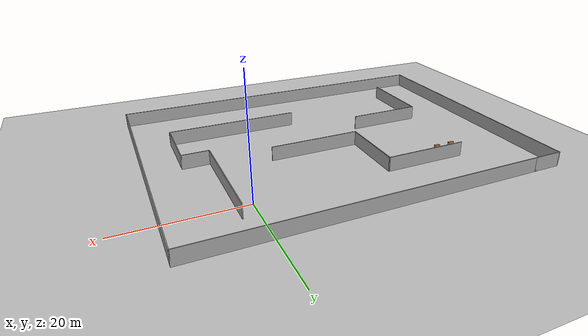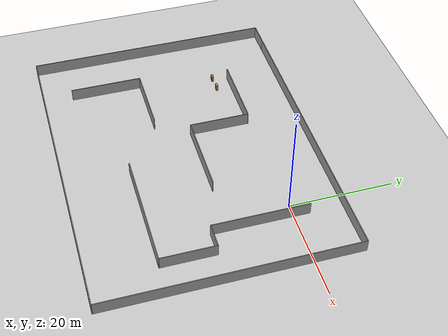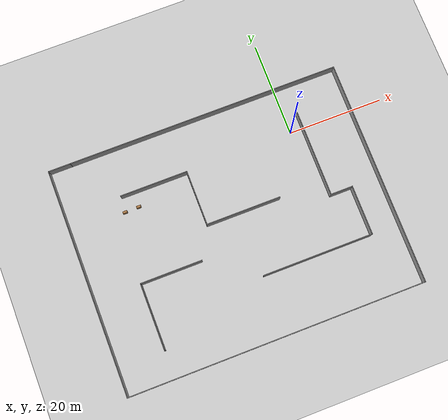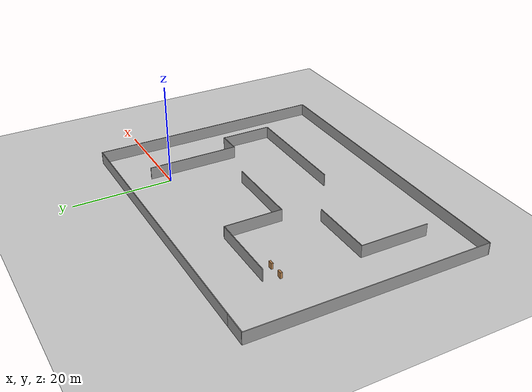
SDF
<sdf version="1.7">
 <world name="default">
  <light name="sun" type="directional">
   <pose>0 0 10 0 -0 0</pose>
   <diffuse>0.8 0.8 0.8 1</diffuse>
   <specular>0.2 0.2 0.2 1</specular>
   <attenuation>
    <range>1000</range>
    <constant>0.9</constant>
    <linear>0.01</linear>
    <quadratic>0.001</quadratic>
   </attenuation>
   <direction>-0.5 0.1 -0.9</direction>
   <spot><inner_angle>0</inner_angle><outer_angle>0</outer_angle><falloff>0</falloff></spot>
  </light>
  <model name="ground_plane">
   <static>1</static>
   <link name="link">
    <collision name="collision">
     <geometry><plane><normal>0 0 1</normal><size>100 100</size></plane></geometry>
     <surface>
      <contact><collide_bitmask>65535</collide_bitmask></contact>
      <friction><ode><mu>100</mu><mu2>50</mu2></ode></friction>
     </surface>
    </collision>
    <visual name="visual">
     <cast_shadows>0</cast_shadows>
     <geometry><plane><normal>0 0 1</normal><size>100 100</size></plane></geometry>
     <material>
      <script><uri>file://media/materials/scripts/gazebo.material</uri><name>Gazebo/Grey</name></script>
     </material>
    </visual>
   </link>
  </model>
  <gravity>0 0 -9.8</gravity>
  <magnetic_field>6e-06 2.3e-05 -4.2e-05</magnetic_field>
  <atmosphere type="adiabatic"/>
  <physics type="ode">
   <max_step_size>0.001</max_step_size>
   <real_time_factor>1</real_time_factor>
   <real_time_update_rate>1000</real_time_update_rate>
  </physics>
  <scene><ambient>0.4 0.4 0.4 1</ambient><background>0.7 0.7 0.7 1</background><shadows>1</shadows></scene>
  <audio><device>default</device></audio>
  <spherical_coordinates>
   <surface_model>EARTH_WGS84</surface_model>
   <latitude_deg>0</latitude_deg>
   <longitude_deg>0</longitude_deg>
   <elevation>0</elevation>
   <heading_deg>0</heading_deg>
  </spherical_coordinates>
  <model name="Untitled">
   <pose>-17.9168 -14.3854 0 0 -0 0</pose>
   <link name="Wall_10">
    <collision name="Wall_10_Collision">
     <geometry><box><size>15.75 0.15 2.5</size></box></geometry>
     <pose>0 0 1.25 0 -0 0</pose>
    </collision>
    <visual name="Wall_10_Visual">
     <pose>0 0 1.25 0 -0 0</pose>
     <geometry><box><size>15.75 0.15 2.5</size></box></geometry>
     <material>
      <script><uri>file://media/materials/scripts/gazebo.material</uri><name>Gazebo/Grey</name></script>
      <ambient>1 1 1 1</ambient>
     </material>
     <meta><layer>0</layer></meta>
    </visual>
    <pose>2.79517 2.25792 0 0 -0 0</pose>
   </link>
   <link name="Wall_12">
    <collision name="Wall_12_Collision">
     <geometry><box><size>14 0.15 2.5</size></box></geometry>
     <pose>0 0 1.25 0 -0 0</pose>
    </collision>
    <visual name="Wall_12_Visual">
     <pose>0 0 1.25 0 -0 0</pose>
     <geometry><box><size>14 0.15 2.5</size></box></geometry>
     <material>
      <script><uri>file://media/materials/scripts/gazebo.material</uri><name>Gazebo/Grey</name></script>
      <ambient>1 1 1 1</ambient>
     </material>
     <meta><layer>0</layer></meta>
    </visual>
    <pose>-21.3507 -11.033 0 0 -0 1.5708</pose>
   </link>
   <link name="Wall_13">
    <collision name="Wall_13_Collision">
     <geometry><box><size>13 0.15 2.5</size></box></geometry>
     <pose>0 0 1.25 0 -0 0</pose>
    </collision>
    <visual name="Wall_13_Visual">
     <pose>0 0 1.25 0 -0 0</pose>
     <geometry><box><size>13 0.15 2.5</size></box></geometry>
     <material>
      <script><uri>file://media/materials/scripts/gazebo.material</uri><name>Gazebo/Grey</name></script>
      <ambient>1 1 1 1</ambient>
     </material>
     <meta><layer>0</layer></meta>
    </visual>
    <pose>-14.9257 -4.10799 0 0 -0 0</pose>
   </link>
   <link name="Wall_16">
    <collision name="Wall_16_Collision">
     <geometry><box><size>18.5 0.15 2.5</size></box></geometry>
     <pose>0 0 1.25 0 -0 0</pose>
    </collision>
    <visual name="Wall_16_Visual">
     <pose>0 0 1.25 0 -0 0</pose>
     <geometry><box><size>18.5 0.15 2.5</size></box></geometry>
     <material>
      <script><uri>file://media/materials/scripts/gazebo.material</uri><name>Gazebo/Grey</name></script>
      <ambient>1 1 1 1</ambient>
     </material>
     <meta><layer>0</layer></meta>
    </visual>
    <pose>20.3843 8.23882 0 0 -0 -1.5708</pose>
   </link>
   <link name="Wall_17">
    <collision name="Wall_17_Collision">
     <geometry><box><size>4.75 0.15 2.5</size></box></geometry>
     <pose>0 0 1.25 0 -0 0</pose>
    </collision>
    <visual name="Wall_17_Visual">
     <pose>0 0 1.25 0 -0 0</pose>
     <geometry><box><size>4.75 0.15 2.5</size></box></geometry>
     <material>
      <script><uri>file://media/materials/scripts/gazebo.material</uri><name>Gazebo/Grey</name></script>
      <ambient>1 1 1 1</ambient>
     </material>
     <meta><layer>0</layer></meta>
    </visual>
    <pose>22.6843 -0.936182 0 0 -0 0</pose>
   </link>
   <link name="Wall_18">
    <collision name="Wall_18_Collision">
     <geometry><box><size>10.5 0.15 2.5</size></box></geometry>
     <pose>0 0 1.25 0 -0 0</pose>
    </collision>
    <visual name="Wall_18_Visual">
     <pose>0 0 1.25 0 -0 0</pose>
     <geometry><box><size>10.5 0.15 2.5</size></box></geometry>
     <material>
      <script><uri>file://media/materials/scripts/gazebo.material</uri><name>Gazebo/Grey</name></script>
      <ambient>1 1 1 1</ambient>
     </material>
     <meta><layer>0</layer></meta>
    </visual>
    <pose>24.9843 -6.11118 0 0 -0 -1.5708</pose>
   </link>
   <link name="Wall_19">
    <collision name="Wall_19_Collision">
     <geometry><box><size>23.25 0.15 2.5</size></box></geometry>
     <pose>0 0 1.25 0 -0 0</pose>
    </collision>
    <visual name="Wall_19_Visual">
     <pose>0 0 1.25 0 -0 0</pose>
     <geometry><box><size>23.25 0.15 2.5</size></box></geometry>
     <material>
      <script><uri>file://media/materials/scripts/gazebo.material</uri><name>Gazebo/Grey</name></script>
      <ambient>1 1 1 1</ambient>
     </material>
     <meta><layer>0</layer></meta>
    </visual>
    <pose>13.4343 -11.2862 0 0 -0 3.14159</pose>
   </link>
   <link name="Wall_2">
    <collision name="Wall_2_Collision">
     <geometry><box><size>57.5 0.15 2.5</size></box></geometry>
     <pose>0 0 1.25 0 -0 0</pose>
    </collision>
    <visual name="Wall_2_Visual">
     <pose>0 0 1.25 0 -0 0</pose>
     <geometry><box><size>57.5 0.15 2.5</size></box></geometry>
     <material>
      <script><uri>file://media/materials/scripts/gazebo.material</uri><name>Gazebo/Grey</name></script>
      <ambient>1 1 1 1</ambient>
     </material>
     <meta><layer>0</layer></meta>
    </visual>
    <pose>2.375 23.8 0 0 -0 0</pose>
   </link>
   <link name="Wall_3">
    <collision name="Wall_3_Collision">
     <geometry><box><size>47.75 0.15 2.5</size></box></geometry>
     <pose>0 0 1.25 0 -0 0</pose>
    </collision>
    <visual name="Wall_3_Visual">
     <pose>0 0 1.25 0 -0 0</pose>
     <geometry><box><size>47.75 0.15 2.5</size></box></geometry>
     <material>
      <script><uri>file://media/materials/scripts/gazebo.material</uri><name>Gazebo/Grey</name></script>
      <ambient>1 1 1 1</ambient>
     </material>
     <meta><layer>0</layer></meta>
    </visual>
    <pose>31.05 -0 0 0 -0 -1.5708</pose>
   </link>
   <link name="Wall_4">
    <collision name="Wall_4_Collision">
     <geometry><box><size>62.25 0.15 2.5</size></box></geometry>
     <pose>0 0 1.25 0 -0 0</pose>
    </collision>
    <visual name="Wall_4_Visual">
     <pose>0 0 1.25 0 -0 0</pose>
     <geometry><box><size>62.25 0.15 2.5</size></box></geometry>
     <material>
      <script><uri>file://media/materials/scripts/gazebo.material</uri><name>Gazebo/Grey</name></script>
      <ambient>1 1 1 1</ambient>
     </material>
     <meta><layer>0</layer></meta>
    </visual>
    <pose>1e-06 -23.8 0 0 -0 3.14159</pose>
   </link>
   <link name="Wall_5">
    <collision name="Wall_5_Collision">
     <geometry><box><size>47.75 0.15 2.5</size></box></geometry>
     <pose>0 0 1.25 0 -0 0</pose>
    </collision>
    <visual name="Wall_5_Visual">
     <pose>0 0 1.25 0 -0 0</pose>
     <geometry><box><size>47.75 0.15 2.5</size></box></geometry>
     <material>
      <script><uri>file://media/materials/scripts/gazebo.material</uri><name>Gazebo/Grey</name></script>
      <ambient>1 1 1 1</ambient>
     </material>
     <meta><layer>0</layer></meta>
    </visual>
    <pose>-31.05 -0 0 0 -0 1.5708</pose>
   </link>
   <link name="Wall_6">
    <collision name="Wall_6_Collision">
     <geometry><box><size>5 0.15 2.5</size></box></geometry>
     <pose>0 0 1.25 0 -0 0</pose>
    </collision>
    <visual name="Wall_6_Visual">
     <pose>0 0 1.25 0 -0 0</pose>
     <geometry><box><size>5 0.15 2.5</size></box></geometry>
     <material>
      <script><uri>file://media/materials/scripts/gazebo.material</uri><name>Gazebo/Grey</name></script>
      <ambient>1 1 1 1</ambient>
     </material>
     <meta><layer>0</layer></meta>
    </visual>
    <pose>-28.625 23.8 0 0 -0 0</pose>
   </link>
   <link name="Wall_8">
    <collision name="Wall_8_Collision">
     <geometry><box><size>14.25 0.15 2.5</size></box></geometry>
     <pose>0 0 1.25 0 -0 0</pose>
    </collision>
    <visual name="Wall_8_Visual">
     <pose>0 0 1.25 0 -0 0</pose>
     <geometry><box><size>14.25 0.15 2.5</size></box></geometry>
     <material>
      <script><uri>file://media/materials/scripts/gazebo.material</uri><name>Gazebo/Grey</name></script>
      <ambient>1 1 1 1</ambient>
     </material>
     <meta><layer>0</layer></meta>
    </visual>
    <pose>-12.0548 13.8579 0 0 -0 0</pose>
   </link>
   <link name="Wall_9">
    <collision name="Wall_9_Collision">
     <geometry><box><size>11.75 0.15 2.5</size></box></geometry>
     <pose>0 0 1.25 0 -0 0</pose>
    </collision>
    <visual name="Wall_9_Visual">
     <pose>0 0 1.25 0 -0 0</pose>
     <geometry><box><size>11.75 0.15 2.5</size></box></geometry>
     <material>
      <script><uri>file://media/materials/scripts/gazebo.material</uri><name>Gazebo/Grey</name></script>
      <ambient>1 1 1 1</ambient>
     </material>
     <meta><layer>0</layer></meta>
    </visual>
    <pose>-5.00483 8.05792 0 0 -0 -1.5708</pose>
   </link>
   <static>1</static>
  </model>
  <model name="bookshelf">
   <static>1</static>
   <link name="link">
    <inertial><mass>1</mass></inertial>
    <collision name="back">
     <pose>0 0.005 0.6 0 -0 0</pose>
     <geometry><box><size>0.9 0.01 1.2</size></box></geometry>
    </collision>
    <visual name="visual1">
     <pose>0 0.005 0.6 0 -0 0</pose>
     <geometry><box><size>0.9 0.01 1.2</size></box></geometry>
     <material>
      <script><uri>file://media/materials/scripts/gazebo.material</uri><name>Gazebo/Wood</name></script>
     </material>
    </visual>
    <collision name="left_side">
     <pose>0.45 -0.195 0.6 0 -0 0</pose>
     <geometry><box><size>0.02 0.4 1.2</size></box></geometry>
    </collision>
    <visual name="visual2">
     <pose>0.45 -0.195 0.6 0 -0 0</pose>
     <geometry><box><size>0.02 0.4 1.2</size></box></geometry>
     <material>
      <script><uri>file://media/materials/scripts/gazebo.material</uri><name>Gazebo/Wood</name></script>
     </material>
    </visual>
    <collision name="right_side">
     <pose>-0.45 -0.195 0.6 0 -0 0</pose>
     <geometry><box><size>0.02 0.4 1.2</size></box></geometry>
    </collision>
    <visual name="visual3">
     <pose>-0.45 -0.195 0.6 0 -0 0</pose>
     <geometry><box><size>0.02 0.4 1.2</size></box></geometry>
     <material>
      <script><uri>file://media/materials/scripts/gazebo.material</uri><name>Gazebo/Wood</name></script>
     </material>
    </visual>
    <collision name="bottom">
     <pose>0 -0.195 0.03 0 -0 0</pose>
     <geometry><box><size>0.88 0.4 0.06</size></box></geometry>
    </collision>
    <visual name="visual4">
     <pose>0 -0.195 0.03 0 -0 0</pose>
     <geometry><box><size>0.88 0.4 0.06</size></box></geometry>
     <material>
      <script><uri>file://media/materials/scripts/gazebo.material</uri><name>Gazebo/Wood</name></script>
     </material>
    </visual>
    <collision name="top">
     <pose>0 -0.195 1.19 0 -0 0</pose>
     <geometry><box><size>0.88 0.4 0.02</size></box></geometry>
    </collision>
    <visual name="visual5">
     <pose>0 -0.195 1.19 0 -0 0</pose>
     <geometry><box><size>0.88 0.4 0.02</size></box></geometry>
     <material>
      <script><uri>file://media/materials/scripts/gazebo.material</uri><name>Gazebo/Wood</name></script>
     </material>
    </visual>
    <collision name="low_shelf">
     <pose>0 -0.195 0.43 0 -0 0</pose>
     <geometry><box><size>0.88 0.4 0.02</size></box></geometry>
    </collision>
    <visual name="visual6">
     <pose>0 -0.195 0.43 0 -0 0</pose>
     <geometry><box><size>0.88 0.4 0.02</size></box></geometry>
     <material>
      <script><uri>file://media/materials/scripts/gazebo.material</uri><name>Gazebo/Wood</name></script>
     </material>
    </visual>
    <collision name="high_shelf">
     <pose>0 -0.195 0.8 0 -0 0</pose>
     <geometry><box><size>0.88 0.4 0.02</size></box></geometry>
    </collision>
    <visual name="visual7">
     <pose>0 -0.195 0.8 0 -0 0</pose>
     <geometry><box><size>0.88 0.4 0.02</size></box></geometry>
     <material>
      <script><uri>file://media/materials/scripts/gazebo.material</uri><name>Gazebo/Wood</name></script>
     </material>
    </visual>
   </link>
   <pose>-37.4041 -3.40928 0 0 -0 0</pose>
  </model>
  <model name="bookshelf_0">
   <static>1</static>
   <link name="link">
    <inertial><mass>1</mass></inertial>
    <collision name="back">
     <pose>0 0.005 0.6 0 -0 0</pose>
     <geometry><box><size>0.9 0.01 1.2</size></box></geometry>
    </collision>
    <visual name="visual1">
     <pose>0 0.005 0.6 0 -0 0</pose>
     <geometry><box><size>0.9 0.01 1.2</size></box></geometry>
     <material>
      <script><uri>file://media/materials/scripts/gazebo.material</uri><name>Gazebo/Wood</name></script>
     </material>
    </visual>
    <collision name="left_side">
     <pose>0.45 -0.195 0.6 0 -0 0</pose>
     <geometry><box><size>0.02 0.4 1.2</size></box></geometry>
    </collision>
    <visual name="visual2">
     <pose>0.45 -0.195 0.6 0 -0 0</pose>
     <geometry><box><size>0.02 0.4 1.2</size></box></geometry>
     <material>
      <script><uri>file://media/materials/scripts/gazebo.material</uri><name>Gazebo/Wood</name></script>
     </material>
    </visual>
    <collision name="right_side">
     <pose>-0.45 -0.195 0.6 0 -0 0</pose>
     <geometry><box><size>0.02 0.4 1.2</size></box></geometry>
    </collision>
    <visual name="visual3">
     <pose>-0.45 -0.195 0.6 0 -0 0</pose>
     <geometry><box><size>0.02 0.4 1.2</size></box></geometry>
     <material>
      <script><uri>file://media/materials/scripts/gazebo.material</uri><name>Gazebo/Wood</name></script>
     </material>
    </visual>
    <collision name="bottom">
     <pose>0 -0.195 0.03 0 -0 0</pose>
     <geometry><box><size>0.88 0.4 0.06</size></box></geometry>
    </collision>
    <visual name="visual4">
     <pose>0 -0.195 0.03 0 -0 0</pose>
     <geometry><box><size>0.88 0.4 0.06</size></box></geometry>
     <material>
      <script><uri>file://media/materials/scripts/gazebo.material</uri><name>Gazebo/Wood</name></script>
     </material>
    </visual>
    <collision name="top">
     <pose>0 -0.195 1.19 0 -0 0</pose>
     <geometry><box><size>0.88 0.4 0.02</size></box></geometry>
    </collision>
    <visual name="visual5">
     <pose>0 -0.195 1.19 0 -0 0</pose>
     <geometry><box><size>0.88 0.4 0.02</size></box></geometry>
     <material>
      <script><uri>file://media/materials/scripts/gazebo.material</uri><name>Gazebo/Wood</name></script>
     </material>
    </visual>
    <collision name="low_shelf">
     <pose>0 -0.195 0.43 0 -0 0</pose>
     <geometry><box><size>0.88 0.4 0.02</size></box></geometry>
    </collision>
    <visual name="visual6">
     <pose>0 -0.195 0.43 0 -0 0</pose>
     <geometry><box><size>0.88 0.4 0.02</size></box></geometry>
     <material>
      <script><uri>file://media/materials/scripts/gazebo.material</uri><name>Gazebo/Wood</name></script>
     </material>
    </visual>
    <collision name="high_shelf">
     <pose>0 -0.195 0.8 0 -0 0</pose>
     <geometry><box><size>0.88 0.4 0.02</size></box></geometry>
    </collision>
    <visual name="visual7">
     <pose>0 -0.195 0.8 0 -0 0</pose>
     <geometry><box><size>0.88 0.4 0.02</size></box></geometry>
     <material>
      <script><uri>file://media/materials/scripts/gazebo.material</uri><name>Gazebo/Wood</name></script>
     </material>
    </visual>
   </link>
   <pose>-34.4548 -3.34587 0 0 -0 0</pose>
  </model>
 </world>
</sdf>
